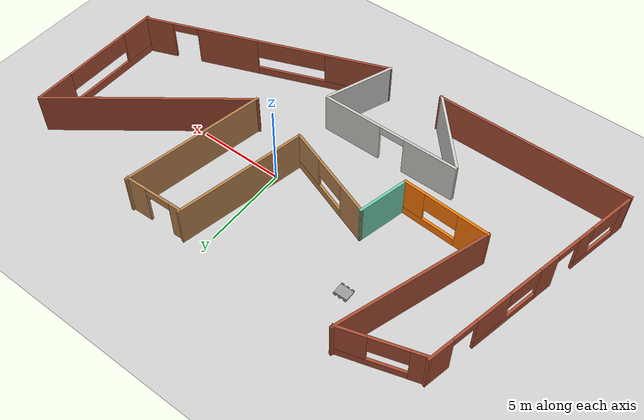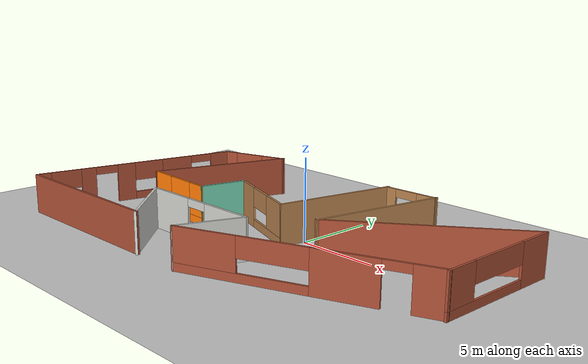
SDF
<sdf version="1.6">
 <world name="default">
  <model name="ground_plane">
   <static>1</static>
   <link name="link">
    <collision name="collision">
     <geometry><plane><normal>0 0 1</normal><size>100 100</size></plane></geometry>
     <surface><friction><ode><mu>100</mu><mu2>50</mu2></ode></friction></surface>
    </collision>
    <visual name="visual">
     <cast_shadows>0</cast_shadows>
     <geometry><plane><normal>0 0 1</normal><size>100 100</size></plane></geometry>
     <material>
      <script><uri>file://media/materials/scripts/gazebo.material</uri><name>Gazebo/Grey</name></script>
     </material>
    </visual>
   </link>
  </model>
  <model name="my_building">
   <pose>-1.82357 -0.88162 0 0 -0 0</pose>
   <link name="Wall_10">
    <pose>-7.20518 -1.23967 0 0 0 -0.053362</pose>
    <visual name="Wall_10_Visual_0">
     <pose>-1.65873 0 1.25 0 -0 0</pose>
     <geometry><box><size>1.79088 0.15 2.5</size></box></geometry>
     <material>
      <script><uri>file://media/materials/scripts/gazebo.material</uri><name>Gazebo/Grey</name></script>
      <ambient>0.996078 0.47451 0.0196078 1</ambient>
     </material>
    </visual>
    <collision name="Wall_10_Collision_0">
     <geometry><box><size>1.79088 0.15 2.5</size></box></geometry>
     <pose>-1.65873 0 1.25 0 -0 0</pose>
    </collision>
    <visual name="Wall_10_Visual_1">
     <pose>0.895442 0 0.25 0 -0 0</pose>
     <geometry><box><size>3.31746 0.15 0.5</size></box></geometry>
     <material>
      <script><uri>file://media/materials/scripts/gazebo.material</uri><name>Gazebo/Grey</name></script>
      <ambient>0.996078 0.47451 0.0196078 1</ambient>
     </material>
    </visual>
    <collision name="Wall_10_Collision_1">
     <geometry><box><size>3.31746 0.15 0.5</size></box></geometry>
     <pose>0.895442 0 0.25 0 -0 0</pose>
    </collision>
    <visual name="Wall_10_Visual_2">
     <pose>1.89544 0 1.5 0 -0 0</pose>
     <geometry><box><size>1.31746 0.15 2</size></box></geometry>
     <material>
      <script><uri>file://media/materials/scripts/gazebo.material</uri><name>Gazebo/Grey</name></script>
      <ambient>0.996078 0.47451 0.0196078 1</ambient>
     </material>
    </visual>
    <collision name="Wall_10_Collision_2">
     <geometry><box><size>1.31746 0.15 2</size></box></geometry>
     <pose>1.89544 0 1.5 0 -0 0</pose>
    </collision>
    <visual name="Wall_10_Visual_3">
     <pose>0.236711 0 1.9 0 -0 0</pose>
     <geometry><box><size>2 0.15 1.2</size></box></geometry>
     <material>
      <script><uri>file://media/materials/scripts/gazebo.material</uri><name>Gazebo/Grey</name></script>
      <ambient>0.996078 0.47451 0.0196078 1</ambient>
     </material>
    </visual>
    <collision name="Wall_10_Collision_3">
     <geometry><box><size>2 0.15 1.2</size></box></geometry>
     <pose>0.236711 0 1.9 0 -0 0</pose>
    </collision>
   </link>
   <link name="Wall_11">
    <collision name="Wall_11_Collision">
     <geometry><box><size>3.02948 0.15 2.5</size></box></geometry>
     <pose>0 0 1.25 0 -0 0</pose>
    </collision>
    <visual name="Wall_11_Visual">
     <pose>0 0 1.25 0 -0 0</pose>
     <geometry><box><size>3.02948 0.15 2.5</size></box></geometry>
     <material>
      <script><uri>file://media/materials/scripts/gazebo.material</uri><name>Gazebo/Grey</name></script>
      <ambient>0.435294 0.796078 0.67451 1</ambient>
     </material>
    </visual>
    <pose>-4.3944 0.028361 0 0 -0 1.33612</pose>
   </link>
   <link name="Wall_12">
    <pose>-1.39731 0.461222 0 0 0 -0.348539</pose>
    <visual name="Wall_12_Visual_0">
     <pose>-1.99563 0 1.25 0 -0 0</pose>
     <geometry><box><size>1.82401 0.15 2.5</size></box></geometry>
     <material>
      <script><uri>file://media/materials/scripts/gazebo.material</uri><name>Gazebo/Wood</name></script>
      <ambient>0.435294 0.796078 0.67451 1</ambient>
     </material>
    </visual>
    <collision name="Wall_12_Collision_0">
     <geometry><box><size>1.82401 0.15 2.5</size></box></geometry>
     <pose>-1.99563 0 1.25 0 -0 0</pose>
    </collision>
    <visual name="Wall_12_Visual_1">
     <pose>0.912006 0 0.25 0 -0 0</pose>
     <geometry><box><size>3.99125 0.15 0.5</size></box></geometry>
     <material>
      <script><uri>file://media/materials/scripts/gazebo.material</uri><name>Gazebo/Wood</name></script>
      <ambient>0.435294 0.796078 0.67451 1</ambient>
     </material>
    </visual>
    <collision name="Wall_12_Collision_1">
     <geometry><box><size>3.99125 0.15 0.5</size></box></geometry>
     <pose>0.912006 0 0.25 0 -0 0</pose>
    </collision>
    <visual name="Wall_12_Visual_2">
     <pose>1.91201 0 1.5 0 -0 0</pose>
     <geometry><box><size>1.99125 0.15 2</size></box></geometry>
     <material>
      <script><uri>file://media/materials/scripts/gazebo.material</uri><name>Gazebo/Wood</name></script>
      <ambient>0.435294 0.796078 0.67451 1</ambient>
     </material>
    </visual>
    <collision name="Wall_12_Collision_2">
     <geometry><box><size>1.99125 0.15 2</size></box></geometry>
     <pose>1.91201 0 1.5 0 -0 0</pose>
    </collision>
    <visual name="Wall_12_Visual_3">
     <pose>-0.083621 0 1.9 0 -0 0</pose>
     <geometry><box><size>2 0.15 1.2</size></box></geometry>
     <material>
      <script><uri>file://media/materials/scripts/gazebo.material</uri><name>Gazebo/Wood</name></script>
      <ambient>0.435294 0.796078 0.67451 1</ambient>
     </material>
    </visual>
    <collision name="Wall_12_Collision_3">
     <geometry><box><size>2 0.15 1.2</size></box></geometry>
     <pose>-0.083621 0 1.9 0 -0 0</pose>
    </collision>
   </link>
   <link name="Wall_13">
    <collision name="Wall_13_Collision">
     <geometry><box><size>7.73883 0.15 2.5</size></box></geometry>
     <pose>0 0 1.25 0 -0 0</pose>
    </collision>
    <visual name="Wall_13_Visual">
     <pose>0 0 1.25 0 -0 0</pose>
     <geometry><box><size>7.73883 0.15 2.5</size></box></geometry>
     <material>
      <script><uri>file://media/materials/scripts/gazebo.material</uri><name>Gazebo/Wood</name></script>
      <ambient>0.435294 0.796078 0.67451 1</ambient>
     </material>
    </visual>
    <pose>2.1093 3.20845 0 0 -0 1.36539</pose>
   </link>
   <link name="Wall_14">
    <pose>4.60393 6.87033 0 0 -0 0.030657</pose>
    <visual name="Wall_14_Visual_0">
     <pose>-1.41036 0 1.25 0 -0 0</pose>
     <geometry><box><size>0.772303 0.15 2.5</size></box></geometry>
     <material>
      <script><uri>file://media/materials/scripts/gazebo.material</uri><name>Gazebo/Wood</name></script>
      <ambient>1 1 1 1</ambient>
     </material>
    </visual>
    <collision name="Wall_14_Collision_0">
     <geometry><box><size>0.772303 0.15 2.5</size></box></geometry>
     <pose>-1.41036 0 1.25 0 -0 0</pose>
    </collision>
    <visual name="Wall_14_Visual_1">
     <pose>1.13615 0 1.25 0 -0 0</pose>
     <geometry><box><size>1.32072 0.15 2.5</size></box></geometry>
     <material>
      <script><uri>file://media/materials/scripts/gazebo.material</uri><name>Gazebo/Wood</name></script>
      <ambient>1 1 1 1</ambient>
     </material>
    </visual>
    <collision name="Wall_14_Collision_1">
     <geometry><box><size>1.32072 0.15 2.5</size></box></geometry>
     <pose>1.13615 0 1.25 0 -0 0</pose>
    </collision>
    <visual name="Wall_14_Visual_2">
     <pose>-0.27421 0 2.25 0 -0 0</pose>
     <geometry><box><size>1.5 0.15 0.5</size></box></geometry>
     <material>
      <script><uri>file://media/materials/scripts/gazebo.material</uri><name>Gazebo/Wood</name></script>
      <ambient>1 1 1 1</ambient>
     </material>
    </visual>
    <collision name="Wall_14_Collision_2">
     <geometry><box><size>1.5 0.15 0.5</size></box></geometry>
     <pose>-0.27421 0 2.25 0 -0 0</pose>
    </collision>
   </link>
   <link name="Wall_15">
    <collision name="Wall_15_Collision">
     <geometry><box><size>8.47447 0.15 2.5</size></box></geometry>
     <pose>0 0 1.25 0 -0 0</pose>
    </collision>
    <visual name="Wall_15_Visual">
     <pose>0 0 1.25 0 -0 0</pose>
     <geometry><box><size>8.47447 0.15 2.5</size></box></geometry>
     <material>
      <script><uri>file://media/materials/scripts/gazebo.material</uri><name>Gazebo/Wood</name></script>
      <ambient>1 1 1 1</ambient>
     </material>
    </visual>
    <pose>5.55071 2.93899 0 0 0 -1.75783</pose>
   </link>
   <link name="Wall_16">
    <collision name="Wall_16_Collision">
     <geometry><box><size>11.8484 0.15 2.5</size></box></geometry>
     <pose>0 0 1.25 0 -0 0</pose>
    </collision>
    <visual name="Wall_16_Visual">
     <pose>0 0 1.25 0 -0 0</pose>
     <geometry><box><size>11.8484 0.15 2.5</size></box></geometry>
     <material>
      <script><uri>file://media/materials/scripts/gazebo.material</uri><name>Gazebo/Bricks</name></script>
      <ambient>0.760784 0.662745 0.627451 1</ambient>
     </material>
    </visual>
    <pose>9.36619 2.38481 0 0 -0 0.649059</pose>
   </link>
   <link name="Wall_17">
    <pose>14.026 1.76474 0 0 0 -1.5708</pose>
    <visual name="Wall_17_Visual_0">
     <pose>-3.02356 0 1.25 0 -0 0</pose>
     <geometry><box><size>2.20289 0.15 2.5</size></box></geometry>
     <material>
      <script><uri>file://media/materials/scripts/gazebo.material</uri><name>Gazebo/Bricks</name></script>
      <ambient>0.760784 0.662745 0.627451 1</ambient>
     </material>
    </visual>
    <collision name="Wall_17_Collision_0">
     <geometry><box><size>2.20289 0.15 2.5</size></box></geometry>
     <pose>-3.02356 0 1.25 0 -0 0</pose>
    </collision>
    <visual name="Wall_17_Visual_1">
     <pose>1.10144 0 0.25 0 -0 0</pose>
     <geometry><box><size>6.04711 0.15 0.5</size></box></geometry>
     <material>
      <script><uri>file://media/materials/scripts/gazebo.material</uri><name>Gazebo/Bricks</name></script>
      <ambient>0.760784 0.662745 0.627451 1</ambient>
     </material>
    </visual>
    <collision name="Wall_17_Collision_1">
     <geometry><box><size>6.04711 0.15 0.5</size></box></geometry>
     <pose>1.10144 0 0.25 0 -0 0</pose>
    </collision>
    <visual name="Wall_17_Visual_2">
     <pose>3.10144 0 1.5 0 -0 0</pose>
     <geometry><box><size>2.04711 0.15 2</size></box></geometry>
     <material>
      <script><uri>file://media/materials/scripts/gazebo.material</uri><name>Gazebo/Bricks</name></script>
      <ambient>0.760784 0.662745 0.627451 1</ambient>
     </material>
    </visual>
    <collision name="Wall_17_Collision_2">
     <geometry><box><size>2.04711 0.15 2</size></box></geometry>
     <pose>3.10144 0 1.5 0 -0 0</pose>
    </collision>
    <visual name="Wall_17_Visual_3">
     <pose>0.077887 0 1.9 0 -0 0</pose>
     <geometry><box><size>4 0.15 1.2</size></box></geometry>
     <material>
      <script><uri>file://media/materials/scripts/gazebo.material</uri><name>Gazebo/Bricks</name></script>
      <ambient>0.760784 0.662745 0.627451 1</ambient>
     </material>
    </visual>
    <collision name="Wall_17_Collision_3">
     <geometry><box><size>4 0.15 1.2</size></box></geometry>
     <pose>0.077887 0 1.9 0 -0 0</pose>
    </collision>
   </link>
   <link name="Wall_18">
    <pose>7.23317 -4.80054 0 0 0 -2.77337</pose>
    <visual name="Wall_18_Visual_0">
     <pose>-6.47131 0 1.25 0 -0 0</pose>
     <geometry><box><size>1.76906 0.15 2.5</size></box></geometry>
     <material>
      <script><uri>file://media/materials/scripts/gazebo.material</uri><name>Gazebo/Bricks</name></script>
      <ambient>0.760784 0.662745 0.627451 1</ambient>
     </material>
    </visual>
    <collision name="Wall_18_Collision_0">
     <geometry><box><size>1.76906 0.15 2.5</size></box></geometry>
     <pose>-6.47131 0 1.25 0 -0 0</pose>
    </collision>
    <visual name="Wall_18_Visual_1">
     <pose>-2.27515 0 1.25 0 -0 0</pose>
     <geometry><box><size>3.62326 0.15 2.5</size></box></geometry>
     <material>
      <script><uri>file://media/materials/scripts/gazebo.material</uri><name>Gazebo/Bricks</name></script>
      <ambient>0.760784 0.662745 0.627451 1</ambient>
     </material>
    </visual>
    <collision name="Wall_18_Collision_1">
     <geometry><box><size>3.62326 0.15 2.5</size></box></geometry>
     <pose>-2.27515 0 1.25 0 -0 0</pose>
    </collision>
    <visual name="Wall_18_Visual_2">
     <pose>3.44616 0 0.25 0 -0 0</pose>
     <geometry><box><size>7.81937 0.15 0.5</size></box></geometry>
     <material>
      <script><uri>file://media/materials/scripts/gazebo.material</uri><name>Gazebo/Bricks</name></script>
      <ambient>0.760784 0.662745 0.627451 1</ambient>
     </material>
    </visual>
    <collision name="Wall_18_Collision_2">
     <geometry><box><size>7.81937 0.15 0.5</size></box></geometry>
     <pose>3.44616 0 0.25 0 -0 0</pose>
    </collision>
    <visual name="Wall_18_Visual_3">
     <pose>5.44616 0 1.5 0 -0 0</pose>
     <geometry><box><size>3.81937 0.15 2</size></box></geometry>
     <material>
      <script><uri>file://media/materials/scripts/gazebo.material</uri><name>Gazebo/Bricks</name></script>
      <ambient>0.760784 0.662745 0.627451 1</ambient>
     </material>
    </visual>
    <collision name="Wall_18_Collision_3">
     <geometry><box><size>3.81937 0.15 2</size></box></geometry>
     <pose>5.44616 0 1.5 0 -0 0</pose>
    </collision>
    <visual name="Wall_18_Visual_4">
     <pose>1.53648 0 1.9 0 -0 0</pose>
     <geometry><box><size>4 0.15 1.2</size></box></geometry>
     <material>
      <script><uri>file://media/materials/scripts/gazebo.material</uri><name>Gazebo/Bricks</name></script>
      <ambient>0.760784 0.662745 0.627451 1</ambient>
     </material>
    </visual>
    <collision name="Wall_18_Collision_4">
     <geometry><box><size>4 0.15 1.2</size></box></geometry>
     <pose>1.53648 0 1.9 0 -0 0</pose>
    </collision>
    <visual name="Wall_18_Visual_5">
     <pose>-4.83679 0 2.25 0 -0 0</pose>
     <geometry><box><size>1.5 0.15 0.5</size></box></geometry>
     <material>
      <script><uri>file://media/materials/scripts/gazebo.material</uri><name>Gazebo/Bricks</name></script>
      <ambient>0.760784 0.662745 0.627451 1</ambient>
     </material>
    </visual>
    <collision name="Wall_18_Collision_5">
     <geometry><box><size>1.5 0.15 0.5</size></box></geometry>
     <pose>-4.83679 0 2.25 0 -0 0</pose>
    </collision>
   </link>
   <link name="Wall_19">
    <collision name="Wall_19_Collision">
     <geometry><box><size>4.1326 0.15 2.5</size></box></geometry>
     <pose>0 0 1.25 0 -0 0</pose>
    </collision>
    <visual name="Wall_19_Visual">
     <pose>0 0 1.25 0 -0 0</pose>
     <geometry><box><size>4.1326 0.15 2.5</size></box></geometry>
     <material>
      <script><uri>file://media/materials/scripts/gazebo.material</uri><name>Gazebo/CeilingTiled</name></script>
      <ambient>1 1 1 1</ambient>
     </material>
    </visual>
    <pose>1.14396 -5.5585 0 0 -0 1.20967</pose>
   </link>
   <link name="Wall_20">
    <pose>-2.20247 -3.5901 0 0 -0 3.14159</pose>
    <visual name="Wall_20_Visual_0">
     <pose>-2.34523 0 1.25 0 -0 0</pose>
     <geometry><box><size>3.55955 0.15 2.5</size></box></geometry>
     <material>
      <script><uri>file://media/materials/scripts/gazebo.material</uri><name>Gazebo/CeilingTiled</name></script>
      <ambient>0.921569 0.807843 0.615686 1</ambient>
     </material>
    </visual>
    <collision name="Wall_20_Collision_0">
     <geometry><box><size>3.55955 0.15 2.5</size></box></geometry>
     <pose>-2.34523 0 1.25 0 -0 0</pose>
    </collision>
    <visual name="Wall_20_Visual_1">
     <pose>2.52977 0 1.25 0 -0 0</pose>
     <geometry><box><size>3.19045 0.15 2.5</size></box></geometry>
     <material>
      <script><uri>file://media/materials/scripts/gazebo.material</uri><name>Gazebo/CeilingTiled</name></script>
      <ambient>0.921569 0.807843 0.615686 1</ambient>
     </material>
    </visual>
    <collision name="Wall_20_Collision_1">
     <geometry><box><size>3.19045 0.15 2.5</size></box></geometry>
     <pose>2.52977 0 1.25 0 -0 0</pose>
    </collision>
    <visual name="Wall_20_Visual_2">
     <pose>0.184548 0 2.25 0 -0 0</pose>
     <geometry><box><size>1.5 0.15 0.5</size></box></geometry>
     <material>
      <script><uri>file://media/materials/scripts/gazebo.material</uri><name>Gazebo/CeilingTiled</name></script>
      <ambient>0.921569 0.807843 0.615686 1</ambient>
     </material>
    </visual>
    <collision name="Wall_20_Collision_2">
     <geometry><box><size>1.5 0.15 0.5</size></box></geometry>
     <pose>0.184548 0 2.25 0 -0 0</pose>
    </collision>
   </link>
   <link name="Wall_21">
    <collision name="Wall_21_Collision">
     <geometry><box><size>5.09839 0.15 2.5</size></box></geometry>
     <pose>0 0 1.25 0 -0 0</pose>
    </collision>
    <visual name="Wall_21_Visual">
     <pose>0 0 1.25 0 -0 0</pose>
     <geometry><box><size>5.09839 0.15 2.5</size></box></geometry>
     <material>
      <script><uri>file://media/materials/scripts/gazebo.material</uri><name>Gazebo/CeilingTiled</name></script>
      <ambient>0.921569 0.807843 0.615686 1</ambient>
     </material>
    </visual>
    <pose>-4.60426 -5.54091 0 0 0 -0.841746</pose>
   </link>
   <link name="Wall_22">
    <collision name="Wall_22_Collision">
     <geometry><box><size>11.25 0.15 2.5</size></box></geometry>
     <pose>0 0 1.25 0 -0 0</pose>
    </collision>
    <visual name="Wall_22_Visual">
     <pose>0 0 1.25 0 -0 0</pose>
     <geometry><box><size>11.25 0.15 2.5</size></box></geometry>
     <material>
      <script><uri>file://media/materials/scripts/gazebo.material</uri><name>Gazebo/Bricks</name></script>
      <ambient>0.996078 0.47451 0.0196078 1</ambient>
     </material>
    </visual>
    <pose>-8.50604 -7.31583 0 0 -0 3.14159</pose>
   </link>
   <link name="Wall_7">
    <pose>-12.5684 -0.491172 0 0 -0 1.35294</pose>
    <visual name="Wall_7_Visual_0">
     <pose>-6.46291 0 1.25 0 -0 0</pose>
     <geometry><box><size>0.733183 0.15 2.5</size></box></geometry>
     <material>
      <script><uri>file://media/materials/scripts/gazebo.material</uri><name>Gazebo/Bricks</name></script>
      <ambient>0.996078 0.47451 0.0196078 1</ambient>
     </material>
    </visual>
    <collision name="Wall_7_Collision_0">
     <geometry><box><size>0.733183 0.15 2.5</size></box></geometry>
     <pose>-6.46291 0 1.25 0 -0 0</pose>
    </collision>
    <visual name="Wall_7_Visual_1">
     <pose>-0.982571 0 1.25 0 -0 0</pose>
     <geometry><box><size>1.23194 0.15 2.5</size></box></geometry>
     <material>
      <script><uri>file://media/materials/scripts/gazebo.material</uri><name>Gazebo/Bricks</name></script>
      <ambient>0.996078 0.47451 0.0196078 1</ambient>
     </material>
    </visual>
    <collision name="Wall_7_Collision_1">
     <geometry><box><size>1.23194 0.15 2.5</size></box></geometry>
     <pose>-0.982571 0 1.25 0 -0 0</pose>
    </collision>
    <visual name="Wall_7_Visual_2">
     <pose>6.05834 0 1.25 0 -0 0</pose>
     <geometry><box><size>1.54232 0.15 2.5</size></box></geometry>
     <material>
      <script><uri>file://media/materials/scripts/gazebo.material</uri><name>Gazebo/Bricks</name></script>
      <ambient>0.996078 0.47451 0.0196078 1</ambient>
     </material>
    </visual>
    <collision name="Wall_7_Collision_2">
     <geometry><box><size>1.54232 0.15 2.5</size></box></geometry>
     <pose>6.05834 0 1.25 0 -0 0</pose>
    </collision>
    <visual name="Wall_7_Visual_3">
     <pose>-4.59743 0 0.25 0 -0 0</pose>
     <geometry><box><size>2.99777 0.15 0.5</size></box></geometry>
     <material>
      <script><uri>file://media/materials/scripts/gazebo.material</uri><name>Gazebo/Bricks</name></script>
      <ambient>0.996078 0.47451 0.0196078 1</ambient>
     </material>
    </visual>
    <collision name="Wall_7_Collision_3">
     <geometry><box><size>2.99777 0.15 0.5</size></box></geometry>
     <pose>-4.59743 0 0.25 0 -0 0</pose>
    </collision>
    <visual name="Wall_7_Visual_4">
     <pose>1.71029 0 0.25 0 -0 0</pose>
     <geometry><box><size>4.15378 0.15 0.5</size></box></geometry>
     <material>
      <script><uri>file://media/materials/scripts/gazebo.material</uri><name>Gazebo/Bricks</name></script>
      <ambient>0.996078 0.47451 0.0196078 1</ambient>
     </material>
    </visual>
    <collision name="Wall_7_Collision_4">
     <geometry><box><size>4.15378 0.15 0.5</size></box></geometry>
     <pose>1.71029 0 0.25 0 -0 0</pose>
    </collision>
    <visual name="Wall_7_Visual_5">
     <pose>-3.59743 0 1.5 0 -0 0</pose>
     <geometry><box><size>0.997774 0.15 2</size></box></geometry>
     <material>
      <script><uri>file://media/materials/scripts/gazebo.material</uri><name>Gazebo/Bricks</name></script>
      <ambient>0.996078 0.47451 0.0196078 1</ambient>
     </material>
    </visual>
    <collision name="Wall_7_Collision_5">
     <geometry><box><size>0.997774 0.15 2</size></box></geometry>
     <pose>-3.59743 0 1.5 0 -0 0</pose>
    </collision>
    <visual name="Wall_7_Visual_6">
     <pose>-3.59743 0 1.5 0 -0 0</pose>
     <geometry><box><size>0.997774 0.15 2</size></box></geometry>
     <material>
      <script><uri>file://media/materials/scripts/gazebo.material</uri><name>Gazebo/Bricks</name></script>
      <ambient>0.996078 0.47451 0.0196078 1</ambient>
     </material>
    </visual>
    <collision name="Wall_7_Collision_6">
     <geometry><box><size>0.997774 0.15 2</size></box></geometry>
     <pose>-3.59743 0 1.5 0 -0 0</pose>
    </collision>
    <visual name="Wall_7_Visual_7">
     <pose>2.71029 0 1.5 0 -0 0</pose>
     <geometry><box><size>2.15378 0.15 2</size></box></geometry>
     <material>
      <script><uri>file://media/materials/scripts/gazebo.material</uri><name>Gazebo/Bricks</name></script>
      <ambient>0.996078 0.47451 0.0196078 1</ambient>
     </material>
    </visual>
    <collision name="Wall_7_Collision_7">
     <geometry><box><size>2.15378 0.15 2</size></box></geometry>
     <pose>2.71029 0 1.5 0 -0 0</pose>
    </collision>
    <visual name="Wall_7_Visual_8">
     <pose>-5.09631 0 1.9 0 -0 0</pose>
     <geometry><box><size>2 0.15 1.2</size></box></geometry>
     <material>
      <script><uri>file://media/materials/scripts/gazebo.material</uri><name>Gazebo/Bricks</name></script>
      <ambient>0.996078 0.47451 0.0196078 1</ambient>
     </material>
    </visual>
    <collision name="Wall_7_Collision_8">
     <geometry><box><size>2 0.15 1.2</size></box></geometry>
     <pose>-5.09631 0 1.9 0 -0 0</pose>
    </collision>
    <visual name="Wall_7_Visual_9">
     <pose>0.633398 0 1.9 0 -0 0</pose>
     <geometry><box><size>2 0.15 1.2</size></box></geometry>
     <material>
      <script><uri>file://media/materials/scripts/gazebo.material</uri><name>Gazebo/Bricks</name></script>
      <ambient>0.996078 0.47451 0.0196078 1</ambient>
     </material>
    </visual>
    <collision name="Wall_7_Collision_9">
     <geometry><box><size>2 0.15 1.2</size></box></geometry>
     <pose>0.633398 0 1.9 0 -0 0</pose>
    </collision>
    <visual name="Wall_7_Visual_10">
     <pose>-2.34854 0 2.25 0 -0 0</pose>
     <geometry><box><size>1.5 0.15 0.5</size></box></geometry>
     <material>
      <script><uri>file://media/materials/scripts/gazebo.material</uri><name>Gazebo/Bricks</name></script>
      <ambient>0.996078 0.47451 0.0196078 1</ambient>
     </material>
    </visual>
    <collision name="Wall_7_Collision_10">
     <geometry><box><size>1.5 0.15 0.5</size></box></geometry>
     <pose>-2.34854 0 2.25 0 -0 0</pose>
    </collision>
    <visual name="Wall_7_Visual_11">
     <pose>-2.34854 0 2.25 0 -0 0</pose>
     <geometry><box><size>1.5 0.15 0.5</size></box></geometry>
     <material>
      <script><uri>file://media/materials/scripts/gazebo.material</uri><name>Gazebo/Bricks</name></script>
      <ambient>0.996078 0.47451 0.0196078 1</ambient>
     </material>
    </visual>
    <collision name="Wall_7_Collision_11">
     <geometry><box><size>1.5 0.15 0.5</size></box></geometry>
     <pose>-2.34854 0 2.25 0 -0 0</pose>
    </collision>
    <visual name="Wall_7_Visual_12">
     <pose>4.53718 0 2.25 0 -0 0</pose>
     <geometry><box><size>1.5 0.15 0.5</size></box></geometry>
     <material>
      <script><uri>file://media/materials/scripts/gazebo.material</uri><name>Gazebo/Bricks</name></script>
      <ambient>0.996078 0.47451 0.0196078 1</ambient>
     </material>
    </visual>
    <collision name="Wall_7_Collision_12">
     <geometry><box><size>1.5 0.15 0.5</size></box></geometry>
     <pose>4.53718 0 2.25 0 -0 0</pose>
    </collision>
   </link>
   <link name="Wall_8">
    <pose>-8.97514 6.65806 0 0 -0 0.299999</pose>
    <visual name="Wall_8_Visual_0">
     <pose>-1.83868 0 1.25 0 -0 0</pose>
     <geometry><box><size>0.938894 0.15 2.5</size></box></geometry>
     <material>
      <script><uri>file://media/materials/scripts/gazebo.material</uri><name>Gazebo/Bricks</name></script>
      <ambient>0.996078 0.47451 0.0196078 1</ambient>
     </material>
    </visual>
    <collision name="Wall_8_Collision_0">
     <geometry><box><size>0.938894 0.15 2.5</size></box></geometry>
     <pose>-1.83868 0 1.25 0 -0 0</pose>
    </collision>
    <visual name="Wall_8_Visual_1">
     <pose>0.469447 0 0.25 0 -0 0</pose>
     <geometry><box><size>3.67735 0.15 0.5</size></box></geometry>
     <material>
      <script><uri>file://media/materials/scripts/gazebo.material</uri><name>Gazebo/Bricks</name></script>
      <ambient>0.996078 0.47451 0.0196078 1</ambient>
     </material>
    </visual>
    <collision name="Wall_8_Collision_1">
     <geometry><box><size>3.67735 0.15 0.5</size></box></geometry>
     <pose>0.469447 0 0.25 0 -0 0</pose>
    </collision>
    <visual name="Wall_8_Visual_2">
     <pose>1.46945 0 1.5 0 -0 0</pose>
     <geometry><box><size>1.67735 0.15 2</size></box></geometry>
     <material>
      <script><uri>file://media/materials/scripts/gazebo.material</uri><name>Gazebo/Bricks</name></script>
      <ambient>0.996078 0.47451 0.0196078 1</ambient>
     </material>
    </visual>
    <collision name="Wall_8_Collision_2">
     <geometry><box><size>1.67735 0.15 2</size></box></geometry>
     <pose>1.46945 0 1.5 0 -0 0</pose>
    </collision>
    <visual name="Wall_8_Visual_3">
     <pose>-0.369229 0 1.9 0 -0 0</pose>
     <geometry><box><size>2 0.15 1.2</size></box></geometry>
     <material>
      <script><uri>file://media/materials/scripts/gazebo.material</uri><name>Gazebo/Bricks</name></script>
      <ambient>0.996078 0.47451 0.0196078 1</ambient>
     </material>
    </visual>
    <collision name="Wall_8_Collision_3">
     <geometry><box><size>2 0.15 1.2</size></box></geometry>
     <pose>-0.369229 0 1.9 0 -0 0</pose>
    </collision>
   </link>
   <link name="Wall_9">
    <collision name="Wall_9_Collision">
     <geometry><box><size>9.16616 0.15 2.5</size></box></geometry>
     <pose>0 0 1.25 0 -0 0</pose>
    </collision>
    <visual name="Wall_9_Visual">
     <pose>0 0 1.25 0 -0 0</pose>
     <geometry><box><size>9.16616 0.15 2.5</size></box></geometry>
     <material>
      <script><uri>file://media/materials/scripts/gazebo.material</uri><name>Gazebo/Bricks</name></script>
      <ambient>0.921569 0.807843 0.615686 1</ambient>
     </material>
    </visual>
    <pose>-8.26146 3.14483 0 0 0 -1.89117</pose>
   </link>
   <static>1</static>
  </model>
  <model name="metal_hawk_1">
   <link name="link_0">
    <pose>0.748449 -1.01746 0.5 0 -0 0</pose>
    <inertial>
     <mass>1</mass>
     <inertia>
      <ixx>0.166667</ixx>
      <ixy>0</ixy>
      <ixz>0</ixz>
      <iyy>0.166667</iyy>
      <iyz>0</iyz>
      <izz>0.166667</izz>
     </inertia>
     <pose>0 0 0.1 0 -0 0</pose>
    </inertial>
    <visual name="visual">
     <geometry><box><size>0.8 0.6 0.1</size></box></geometry>
     <material>
      <lighting>1</lighting>
      <script><uri>file://media/materials/scripts/gazebo.material</uri><name>Gazebo/Grey</name></script>
      <ambient>0.3 0.3 0.3 1</ambient>
      <diffuse>0.7 0.7 0.7 1</diffuse>
      <specular>0.01 0.01 0.01 1</specular>
      <emissive>0 0 0 1</emissive>
      <shader type="vertex"><normal_map>__default__</normal_map></shader>
     </material>
    </visual>
    <collision name="collision">
     <geometry><box><size>0.8 0.6 0.1</size></box></geometry>
     <surface>
      <friction>
       <ode><mu>1</mu><mu2>1</mu2><fdir1>0 0 0</fdir1><slip1>0</slip1><slip2>0</slip2></ode>
       <torsional>
        <coefficient>1</coefficient>
        <patch_radius>0</patch_radius>
        <surface_radius>0</surface_radius>
        <use_patch_radius>1</use_patch_radius>
        <ode><slip>0</slip></ode>
       </torsional>
      </friction>
      <bounce><restitution_coefficient>0</restitution_coefficient><threshold>1e+06</threshold></bounce>
      <contact>
       <collide_without_contact>0</collide_without_contact>
       <collide_without_contact_bitmask>1</collide_without_contact_bitmask>
       <collide_bitmask>1</collide_bitmask>
       <ode>
        <soft_cfm>0</soft_cfm>
        <soft_erp>0.2</soft_erp>
        <kp>1e+13</kp>
        <kd>1</kd>
        <max_vel>0.01</max_vel>
        <min_depth>0</min_depth>
       </ode>
       <bullet>
        <split_impulse>1</split_impulse>
        <split_impulse_penetration_threshold>-0.01</split_impulse_penetration_threshold>
        <soft_cfm>0</soft_cfm>
        <soft_erp>0.2</soft_erp>
        <kp>1e+13</kp>
        <kd>1</kd>
       </bullet>
      </contact>
     </surface>
    </collision>
   </link>
   <link name="link_1">
    <pose>0.448449 -1.34247 0.5 1.5707 -0 0</pose>
    <inertial>
     <mass>1</mass>
     <inertia><ixx>0.145833</ixx><ixy>0</ixy><ixz>0</ixz><iyy>0.145833</iyy><iyz>0</iyz><izz>0.125</izz></inertia>
    </inertial>
    <visual name="visual">
     <geometry><cylinder><radius>0.1</radius><length>0.05</length></cylinder></geometry>
     <material>
      <lighting>1</lighting>
      <script><uri>file://media/materials/scripts/gazebo.material</uri><name>Gazebo/Grey</name></script>
      <ambient>0.3 0.3 0.3 1</ambient>
      <diffuse>0.7 0.7 0.7 1</diffuse>
      <specular>0.01 0.01 0.01 1</specular>
      <emissive>0 0 0 1</emissive>
      <shader type="vertex"><normal_map>__default__</normal_map></shader>
     </material>
    </visual>
    <collision name="collision">
     <geometry><cylinder><radius>0.1</radius><length>0.05</length></cylinder></geometry>
     <surface>
      <friction>
       <ode><mu>1</mu><mu2>1</mu2><fdir1>0 0 0</fdir1><slip1>0</slip1><slip2>0</slip2></ode>
       <torsional>
        <coefficient>1</coefficient>
        <patch_radius>0</patch_radius>
        <surface_radius>0</surface_radius>
        <use_patch_radius>1</use_patch_radius>
        <ode><slip>0</slip></ode>
       </torsional>
      </friction>
      <bounce><restitution_coefficient>0</restitution_coefficient><threshold>1e+06</threshold></bounce>
      <contact>
       <collide_without_contact>0</collide_without_contact>
       <collide_without_contact_bitmask>1</collide_without_contact_bitmask>
       <collide_bitmask>1</collide_bitmask>
       <ode>
        <soft_cfm>0</soft_cfm>
        <soft_erp>0.2</soft_erp>
        <kp>1e+13</kp>
        <kd>1</kd>
        <max_vel>0.01</max_vel>
        <min_depth>0</min_depth>
       </ode>
       <bullet>
        <split_impulse>1</split_impulse>
        <split_impulse_penetration_threshold>-0.01</split_impulse_penetration_threshold>
        <soft_cfm>0</soft_cfm>
        <soft_erp>0.2</soft_erp>
        <kp>1e+13</kp>
        <kd>1</kd>
       </bullet>
      </contact>
     </surface>
    </collision>
   </link>
   <link name="link_1_clone">
    <pose>1.04845 -1.34247 0.5 1.5707 -0 0</pose>
    <inertial>
     <mass>1</mass>
     <inertia><ixx>0.145833</ixx><ixy>0</ixy><ixz>0</ixz><iyy>0.145833</iyy><iyz>0</iyz><izz>0.125</izz></inertia>
    </inertial>
    <visual name="visual">
     <geometry><cylinder><radius>0.1</radius><length>0.05</length></cylinder></geometry>
     <material>
      <lighting>1</lighting>
      <script><uri>file://media/materials/scripts/gazebo.material</uri><name>Gazebo/Grey</name></script>
      <ambient>0.3 0.3 0.3 1</ambient>
      <diffuse>0.7 0.7 0.7 1</diffuse>
      <specular>0.01 0.01 0.01 1</specular>
      <emissive>0 0 0 1</emissive>
      <shader type="vertex"><normal_map>__default__</normal_map></shader>
     </material>
    </visual>
    <collision name="collision">
     <geometry><cylinder><radius>0.1</radius><length>0.05</length></cylinder></geometry>
     <surface>
      <friction>
       <ode><mu>1</mu><mu2>1</mu2><fdir1>0 0 0</fdir1><slip1>0</slip1><slip2>0</slip2></ode>
       <torsional>
        <coefficient>1</coefficient>
        <patch_radius>0</patch_radius>
        <surface_radius>0</surface_radius>
        <use_patch_radius>1</use_patch_radius>
        <ode><slip>0</slip></ode>
       </torsional>
      </friction>
      <bounce><restitution_coefficient>0</restitution_coefficient><threshold>1e+06</threshold></bounce>
      <contact>
       <collide_without_contact>0</collide_without_contact>
       <collide_without_contact_bitmask>1</collide_without_contact_bitmask>
       <collide_bitmask>1</collide_bitmask>
       <ode>
        <soft_cfm>0</soft_cfm>
        <soft_erp>0.2</soft_erp>
        <kp>1e+13</kp>
        <kd>1</kd>
        <max_vel>0.01</max_vel>
        <min_depth>0</min_depth>
       </ode>
       <bullet>
        <split_impulse>1</split_impulse>
        <split_impulse_penetration_threshold>-0.01</split_impulse_penetration_threshold>
        <soft_cfm>0</soft_cfm>
        <soft_erp>0.2</soft_erp>
        <kp>1e+13</kp>
        <kd>1</kd>
       </bullet>
      </contact>
     </surface>
    </collision>
   </link>
   <link name="link_1_clone_0">
    <pose>1.04845 -0.692452 0.5 1.5707 -0 0</pose>
    <inertial>
     <mass>1</mass>
     <inertia><ixx>0.145833</ixx><ixy>0</ixy><ixz>0</ixz><iyy>0.145833</iyy><iyz>0</iyz><izz>0.125</izz></inertia>
    </inertial>
    <visual name="visual">
     <geometry><cylinder><radius>0.1</radius><length>0.05</length></cylinder></geometry>
     <material>
      <lighting>1</lighting>
      <script><uri>file://media/materials/scripts/gazebo.material</uri><name>Gazebo/Grey</name></script>
      <ambient>0.3 0.3 0.3 1</ambient>
      <diffuse>0.7 0.7 0.7 1</diffuse>
      <specular>0.01 0.01 0.01 1</specular>
      <emissive>0 0 0 1</emissive>
      <shader type="vertex"><normal_map>__default__</normal_map></shader>
     </material>
    </visual>
    <collision name="collision">
     <geometry><cylinder><radius>0.1</radius><length>0.05</length></cylinder></geometry>
     <surface>
      <friction>
       <ode><mu>1</mu><mu2>1</mu2><fdir1>0 0 0</fdir1><slip1>0</slip1><slip2>0</slip2></ode>
       <torsional>
        <coefficient>1</coefficient>
        <patch_radius>0</patch_radius>
        <surface_radius>0</surface_radius>
        <use_patch_radius>1</use_patch_radius>
        <ode><slip>0</slip></ode>
       </torsional>
      </friction>
      <bounce><restitution_coefficient>0</restitution_coefficient><threshold>1e+06</threshold></bounce>
      <contact>
       <collide_without_contact>0</collide_without_contact>
       <collide_without_contact_bitmask>1</collide_without_contact_bitmask>
       <collide_bitmask>1</collide_bitmask>
       <ode>
        <soft_cfm>0</soft_cfm>
        <soft_erp>0.2</soft_erp>
        <kp>1e+13</kp>
        <kd>1</kd>
        <max_vel>0.01</max_vel>
        <min_depth>0</min_depth>
       </ode>
       <bullet>
        <split_impulse>1</split_impulse>
        <split_impulse_penetration_threshold>-0.01</split_impulse_penetration_threshold>
        <soft_cfm>0</soft_cfm>
        <soft_erp>0.2</soft_erp>
        <kp>1e+13</kp>
        <kd>1</kd>
       </bullet>
      </contact>
     </surface>
    </collision>
   </link>
   <link name="link_1_clone_0_clone">
    <pose>0.748449 -0.692452 0.5 1.5707 -0 0</pose>
    <inertial>
     <mass>1</mass>
     <inertia><ixx>0.145833</ixx><ixy>0</ixy><ixz>0</ixz><iyy>0.145833</iyy><iyz>0</iyz><izz>0.125</izz></inertia>
    </inertial>
    <visual name="visual">
     <geometry><cylinder><radius>0.1</radius><length>0.05</length></cylinder></geometry>
     <material>
      <lighting>1</lighting>
      <script><uri>file://media/materials/scripts/gazebo.material</uri><name>Gazebo/Grey</name></script>
      <ambient>0.3 0.3 0.3 1</ambient>
      <diffuse>0.7 0.7 0.7 1</diffuse>
      <specular>0.01 0.01 0.01 1</specular>
      <emissive>0 0 0 1</emissive>
      <shader type="vertex"><normal_map>__default__</normal_map></shader>
     </material>
    </visual>
    <collision name="collision">
     <geometry><cylinder><radius>0.1</radius><length>0.05</length></cylinder></geometry>
     <surface>
      <friction>
       <ode><mu>1</mu><mu2>1</mu2><fdir1>0 0 0</fdir1><slip1>0</slip1><slip2>0</slip2></ode>
       <torsional>
        <coefficient>1</coefficient>
        <patch_radius>0</patch_radius>
        <surface_radius>0</surface_radius>
        <use_patch_radius>1</use_patch_radius>
        <ode><slip>0</slip></ode>
       </torsional>
      </friction>
      <bounce><restitution_coefficient>0</restitution_coefficient><threshold>1e+06</threshold></bounce>
      <contact>
       <collide_without_contact>0</collide_without_contact>
       <collide_without_contact_bitmask>1</collide_without_contact_bitmask>
       <collide_bitmask>1</collide_bitmask>
       <ode>
        <soft_cfm>0</soft_cfm>
        <soft_erp>0.2</soft_erp>
        <kp>1e+13</kp>
        <kd>1</kd>
        <max_vel>0.01</max_vel>
        <min_depth>0</min_depth>
       </ode>
       <bullet>
        <split_impulse>1</split_impulse>
        <split_impulse_penetration_threshold>-0.01</split_impulse_penetration_threshold>
        <soft_cfm>0</soft_cfm>
        <soft_erp>0.2</soft_erp>
        <kp>1e+13</kp>
        <kd>1</kd>
       </bullet>
      </contact>
     </surface>
    </collision>
   </link>
   <link name="link_1_clone_0_clone_clone">
    <pose>0.448449 -0.692452 0.5 1.5707 -0 0</pose>
    <inertial>
     <mass>1</mass>
     <inertia><ixx>0.145833</ixx><ixy>0</ixy><ixz>0</ixz><iyy>0.145833</iyy><iyz>0</iyz><izz>0.125</izz></inertia>
    </inertial>
    <visual name="visual">
     <geometry><cylinder><radius>0.1</radius><length>0.05</length></cylinder></geometry>
     <material>
      <lighting>1</lighting>
      <script><uri>file://media/materials/scripts/gazebo.material</uri><name>Gazebo/Grey</name></script>
      <ambient>0.3 0.3 0.3 1</ambient>
      <diffuse>0.7 0.7 0.7 1</diffuse>
      <specular>0.01 0.01 0.01 1</specular>
      <emissive>0 0 0 1</emissive>
      <shader type="vertex"><normal_map>__default__</normal_map></shader>
     </material>
    </visual>
    <collision name="collision">
     <geometry><cylinder><radius>0.1</radius><length>0.05</length></cylinder></geometry>
     <surface>
      <friction>
       <ode><mu>1</mu><mu2>1</mu2><fdir1>0 0 0</fdir1><slip1>0</slip1><slip2>0</slip2></ode>
       <torsional>
        <coefficient>1</coefficient>
        <patch_radius>0</patch_radius>
        <surface_radius>0</surface_radius>
        <use_patch_radius>1</use_patch_radius>
        <ode><slip>0</slip></ode>
       </torsional>
      </friction>
      <bounce><restitution_coefficient>0</restitution_coefficient><threshold>1e+06</threshold></bounce>
      <contact>
       <collide_without_contact>0</collide_without_contact>
       <collide_without_contact_bitmask>1</collide_without_contact_bitmask>
       <collide_bitmask>1</collide_bitmask>
       <ode>
        <soft_cfm>0</soft_cfm>
        <soft_erp>0.2</soft_erp>
        <kp>1e+13</kp>
        <kd>1</kd>
        <max_vel>0.01</max_vel>
        <min_depth>0</min_depth>
       </ode>
       <bullet>
        <split_impulse>1</split_impulse>
        <split_impulse_penetration_threshold>-0.01</split_impulse_penetration_threshold>
        <soft_cfm>0</soft_cfm>
        <soft_erp>0.2</soft_erp>
        <kp>1e+13</kp>
        <kd>1</kd>
       </bullet>
      </contact>
     </surface>
    </collision>
   </link>
   <link name="link_1_clone_clone">
    <pose>0.748449 -1.34247 0.5 1.5707 -0 0</pose>
    <inertial>
     <mass>1</mass>
     <inertia><ixx>0.145833</ixx><ixy>0</ixy><ixz>0</ixz><iyy>0.145833</iyy><iyz>0</iyz><izz>0.125</izz></inertia>
    </inertial>
    <visual name="visual">
     <geometry><cylinder><radius>0.1</radius><length>0.05</length></cylinder></geometry>
     <material>
      <lighting>1</lighting>
      <script><uri>file://media/materials/scripts/gazebo.material</uri><name>Gazebo/Grey</name></script>
      <ambient>0.3 0.3 0.3 1</ambient>
      <diffuse>0.7 0.7 0.7 1</diffuse>
      <specular>0.01 0.01 0.01 1</specular>
      <emissive>0 0 0 1</emissive>
      <shader type="vertex"><normal_map>__default__</normal_map></shader>
     </material>
    </visual>
    <collision name="collision">
     <geometry><cylinder><radius>0.1</radius><length>0.05</length></cylinder></geometry>
     <surface>
      <friction>
       <ode><mu>1</mu><mu2>1</mu2><fdir1>0 0 0</fdir1><slip1>0</slip1><slip2>0</slip2></ode>
       <torsional>
        <coefficient>1</coefficient>
        <patch_radius>0</patch_radius>
        <surface_radius>0</surface_radius>
        <use_patch_radius>1</use_patch_radius>
        <ode><slip>0</slip></ode>
       </torsional>
      </friction>
      <bounce><restitution_coefficient>0</restitution_coefficient><threshold>1e+06</threshold></bounce>
      <contact>
       <collide_without_contact>0</collide_without_contact>
       <collide_without_contact_bitmask>1</collide_without_contact_bitmask>
       <collide_bitmask>1</collide_bitmask>
       <ode>
        <soft_cfm>0</soft_cfm>
        <soft_erp>0.2</soft_erp>
        <kp>1e+13</kp>
        <kd>1</kd>
        <max_vel>0.01</max_vel>
        <min_depth>0</min_depth>
       </ode>
       <bullet>
        <split_impulse>1</split_impulse>
        <split_impulse_penetration_threshold>-0.01</split_impulse_penetration_threshold>
        <soft_cfm>0</soft_cfm>
        <soft_erp>0.2</soft_erp>
        <kp>1e+13</kp>
        <kd>1</kd>
       </bullet>
      </contact>
     </surface>
    </collision>
   </link>
   <joint name="link_0_JOINT_0" type="revolute">
    <parent>link_0</parent>
    <child>link_1</child>
    <axis>
     <xyz>1 0 0</xyz>
     <use_parent_model_frame>0</use_parent_model_frame>
     <limit>
      <lower>-1.79769e+308</lower>
      <upper>1.79769e+308</upper>
      <effort>-1</effort>
      <velocity>-1</velocity>
     </limit>
     <dynamics>
      <spring_reference>0</spring_reference>
      <spring_stiffness>0</spring_stiffness>
      <damping>0</damping>
     </dynamics>
    </axis>
    <physics>
     <ode><limit><cfm>0</cfm><erp>0.2</erp></limit><suspension><cfm>0</cfm><erp>0.2</erp></suspension></ode>
    </physics>
   </joint>
   <joint name="link_0_JOINT_1" type="revolute">
    <parent>link_0</parent>
    <child>link_1_clone_clone</child>
    <axis>
     <xyz>1 0 0</xyz>
     <use_parent_model_frame>0</use_parent_model_frame>
     <limit>
      <lower>-1.79769e+308</lower>
      <upper>1.79769e+308</upper>
      <effort>-1</effort>
      <velocity>-1</velocity>
     </limit>
     <dynamics>
      <spring_reference>0</spring_reference>
      <spring_stiffness>0</spring_stiffness>
      <damping>0</damping>
     </dynamics>
    </axis>
    <physics>
     <ode><limit><cfm>0</cfm><erp>0.2</erp></limit><suspension><cfm>0</cfm><erp>0.2</erp></suspension></ode>
    </physics>
   </joint>
   <joint name="link_0_JOINT_2" type="revolute">
    <parent>link_0</parent>
    <child>link_1_clone</child>
    <axis>
     <xyz>1 0 0</xyz>
     <use_parent_model_frame>0</use_parent_model_frame>
     <limit>
      <lower>-1.79769e+308</lower>
      <upper>1.79769e+308</upper>
      <effort>-1</effort>
      <velocity>-1</velocity>
     </limit>
     <dynamics>
      <spring_reference>0</spring_reference>
      <spring_stiffness>0</spring_stiffness>
      <damping>0</damping>
     </dynamics>
    </axis>
    <physics>
     <ode><limit><cfm>0</cfm><erp>0.2</erp></limit><suspension><cfm>0</cfm><erp>0.2</erp></suspension></ode>
    </physics>
   </joint>
   <joint name="link_0_JOINT_3" type="revolute">
    <parent>link_0</parent>
    <child>link_1_clone_0</child>
    <axis>
     <xyz>1 0 0</xyz>
     <use_parent_model_frame>0</use_parent_model_frame>
     <limit>
      <lower>-1.79769e+308</lower>
      <upper>1.79769e+308</upper>
      <effort>-1</effort>
      <velocity>-1</velocity>
     </limit>
     <dynamics>
      <spring_reference>0</spring_reference>
      <spring_stiffness>0</spring_stiffness>
      <damping>0</damping>
     </dynamics>
    </axis>
    <physics>
     <ode><limit><cfm>0</cfm><erp>0.2</erp></limit><suspension><cfm>0</cfm><erp>0.2</erp></suspension></ode>
    </physics>
   </joint>
   <joint name="link_0_JOINT_4" type="revolute">
    <parent>link_0</parent>
    <child>link_1_clone_0_clone</child>
    <axis>
     <xyz>1 0 0</xyz>
     <use_parent_model_frame>0</use_parent_model_frame>
     <limit>
      <lower>-1.79769e+308</lower>
      <upper>1.79769e+308</upper>
      <effort>-1</effort>
      <velocity>-1</velocity>
     </limit>
     <dynamics>
      <spring_reference>0</spring_reference>
      <spring_stiffness>0</spring_stiffness>
      <damping>0</damping>
     </dynamics>
    </axis>
    <physics>
     <ode><limit><cfm>0</cfm><erp>0.2</erp></limit><suspension><cfm>0</cfm><erp>0.2</erp></suspension></ode>
    </physics>
   </joint>
   <joint name="link_0_JOINT_5" type="revolute">
    <parent>link_0</parent>
    <child>link_1_clone_0_clone_clone</child>
    <axis>
     <xyz>1 0 0</xyz>
     <use_parent_model_frame>0</use_parent_model_frame>
     <limit>
      <lower>-1.79769e+308</lower>
      <upper>1.79769e+308</upper>
      <effort>-1</effort>
      <velocity>-1</velocity>
     </limit>
     <dynamics>
      <spring_reference>0</spring_reference>
      <spring_stiffness>0</spring_stiffness>
      <damping>0</damping>
     </dynamics>
    </axis>
    <physics>
     <ode><limit><cfm>0</cfm><erp>0.2</erp></limit><suspension><cfm>0</cfm><erp>0.2</erp></suspension></ode>
    </physics>
   </joint>
   <static>0</static>
   <pose>-7.91083 4.59048 -0.399999 0 1e-06 0.001195</pose>
  </model>
 </world>
</sdf>
